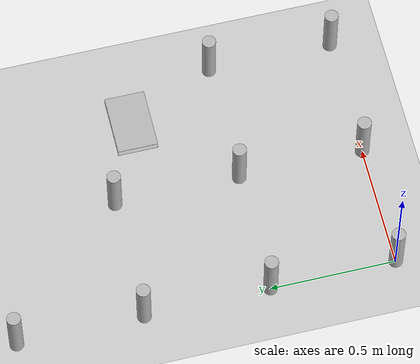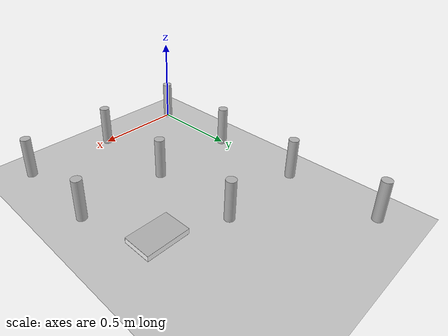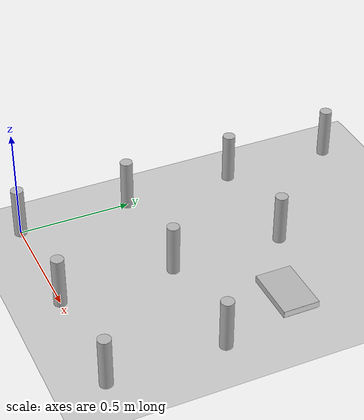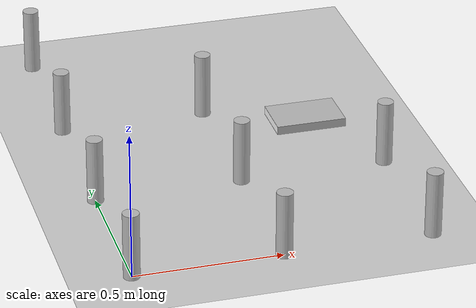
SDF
<sdf version="1.6">
 <world name="default">
  <model name="ground_plane">
   <static>1</static>
   <link name="link">
    <collision name="collision">
     <geometry><plane><normal>0 0 1</normal><size>100 100</size></plane></geometry>
     <surface><friction><ode><mu>100</mu><mu2>50</mu2></ode></friction></surface>
    </collision>
    <visual name="visual">
     <cast_shadows>0</cast_shadows>
     <geometry><plane><normal>0 0 1</normal><size>100 100</size></plane></geometry>
     <material>
      <script><uri>file://media/materials/scripts/gazebo.material</uri><name>Gazebo/Grey</name></script>
     </material>
    </visual>
   </link>
  </model>
  <model name="can0.00.0">
   <link name="link">
    <pose>0 0 0.115 0 -0 0</pose>
    <inertial>
     <mass>39</mass>
     <inertia><ixx>0.00058</ixx><ixy>0</ixy><ixz>0</ixz><iyy>0.00058</iyy><iyz>0</iyz><izz>0.00019</izz></inertia>
    </inertial>
    <collision name="collision">
     <geometry><cylinder><radius>0.0275</radius><length>0.23</length></cylinder></geometry>
    </collision>
    <visual name="visual">
     <geometry><cylinder><radius>0.0275</radius><length>0.23</length></cylinder></geometry>
     <material>
      <script>
       <uri>model://beer/materials/scripts</uri>
       <uri>model://beer/materials/textures</uri>
       <name>Beer/Diffuse</name>
      </script>
     </material>
    </visual>
   </link>
   <pose>0.0 0.0 -2e-06 1e-06 0 -9.5e-05</pose>
  </model>
  <model name="can0.00.5">
   <link name="link">
    <pose>0 0 0.115 0 -0 0</pose>
    <inertial>
     <mass>39</mass>
     <inertia><ixx>0.00058</ixx><ixy>0</ixy><ixz>0</ixz><iyy>0.00058</iyy><iyz>0</iyz><izz>0.00019</izz></inertia>
    </inertial>
    <collision name="collision">
     <geometry><cylinder><radius>0.0275</radius><length>0.23</length></cylinder></geometry>
    </collision>
    <visual name="visual">
     <geometry><cylinder><radius>0.0275</radius><length>0.23</length></cylinder></geometry>
     <material>
      <script>
       <uri>model://beer/materials/scripts</uri>
       <uri>model://beer/materials/textures</uri>
       <name>Beer/Diffuse</name>
      </script>
     </material>
    </visual>
   </link>
   <pose>0.0 0.5 -2e-06 1e-06 0 -9.5e-05</pose>
  </model>
  <model name="can0.01.0">
   <link name="link">
    <pose>0 0 0.115 0 -0 0</pose>
    <inertial>
     <mass>39</mass>
     <inertia><ixx>0.00058</ixx><ixy>0</ixy><ixz>0</ixz><iyy>0.00058</iyy><iyz>0</iyz><izz>0.00019</izz></inertia>
    </inertial>
    <collision name="collision">
     <geometry><cylinder><radius>0.0275</radius><length>0.23</length></cylinder></geometry>
    </collision>
    <visual name="visual">
     <geometry><cylinder><radius>0.0275</radius><length>0.23</length></cylinder></geometry>
     <material>
      <script>
       <uri>model://beer/materials/scripts</uri>
       <uri>model://beer/materials/textures</uri>
       <name>Beer/Diffuse</name>
      </script>
     </material>
    </visual>
   </link>
   <pose>0.0 1.0 -2e-06 1e-06 0 -9.5e-05</pose>
  </model>
  <model name="can0.01.5">
   <link name="link">
    <pose>0 0 0.115 0 -0 0</pose>
    <inertial>
     <mass>39</mass>
     <inertia><ixx>0.00058</ixx><ixy>0</ixy><ixz>0</ixz><iyy>0.00058</iyy><iyz>0</iyz><izz>0.00019</izz></inertia>
    </inertial>
    <collision name="collision">
     <geometry><cylinder><radius>0.0275</radius><length>0.23</length></cylinder></geometry>
    </collision>
    <visual name="visual">
     <geometry><cylinder><radius>0.0275</radius><length>0.23</length></cylinder></geometry>
     <material>
      <script>
       <uri>model://beer/materials/scripts</uri>
       <uri>model://beer/materials/textures</uri>
       <name>Beer/Diffuse</name>
      </script>
     </material>
    </visual>
   </link>
   <pose>0.0 1.5 -2e-06 1e-06 0 -9.5e-05</pose>
  </model>
  <model name="can0.50.0">
   <link name="link">
    <pose>0 0 0.115 0 -0 0</pose>
    <inertial>
     <mass>39</mass>
     <inertia><ixx>0.00058</ixx><ixy>0</ixy><ixz>0</ixz><iyy>0.00058</iyy><iyz>0</iyz><izz>0.00019</izz></inertia>
    </inertial>
    <collision name="collision">
     <geometry><cylinder><radius>0.0275</radius><length>0.23</length></cylinder></geometry>
    </collision>
    <visual name="visual">
     <geometry><cylinder><radius>0.0275</radius><length>0.23</length></cylinder></geometry>
     <material>
      <script>
       <uri>model://beer/materials/scripts</uri>
       <uri>model://beer/materials/textures</uri>
       <name>Beer/Diffuse</name>
      </script>
     </material>
    </visual>
   </link>
   <pose>0.5 0.0 -2e-06 1e-06 0 -9.5e-05</pose>
  </model>
  <model name="can0.50.5">
   <link name="link">
    <pose>0 0 0.115 0 -0 0</pose>
    <inertial>
     <mass>39</mass>
     <inertia><ixx>0.00058</ixx><ixy>0</ixy><ixz>0</ixz><iyy>0.00058</iyy><iyz>0</iyz><izz>0.00019</izz></inertia>
    </inertial>
    <collision name="collision">
     <geometry><cylinder><radius>0.0275</radius><length>0.23</length></cylinder></geometry>
    </collision>
    <visual name="visual">
     <geometry><cylinder><radius>0.0275</radius><length>0.23</length></cylinder></geometry>
     <material>
      <script>
       <uri>model://beer/materials/scripts</uri>
       <uri>model://beer/materials/textures</uri>
       <name>Beer/Diffuse</name>
      </script>
     </material>
    </visual>
   </link>
   <pose>0.5 0.5 -2e-06 1e-06 0 -9.5e-05</pose>
  </model>
  <model name="can0.51.0">
   <link name="link">
    <pose>0 0 0.115 0 -0 0</pose>
    <inertial>
     <mass>39</mass>
     <inertia><ixx>0.00058</ixx><ixy>0</ixy><ixz>0</ixz><iyy>0.00058</iyy><iyz>0</iyz><izz>0.00019</izz></inertia>
    </inertial>
    <collision name="collision">
     <geometry><cylinder><radius>0.0275</radius><length>0.23</length></cylinder></geometry>
    </collision>
    <visual name="visual">
     <geometry><cylinder><radius>0.0275</radius><length>0.23</length></cylinder></geometry>
     <material>
      <script>
       <uri>model://beer/materials/scripts</uri>
       <uri>model://beer/materials/textures</uri>
       <name>Beer/Diffuse</name>
      </script>
     </material>
    </visual>
   </link>
   <pose>0.5 1.0 -2e-06 1e-06 0 -9.5e-05</pose>
  </model>
  <model name="can1.00.0">
   <link name="link">
    <pose>0 0 0.115 0 -0 0</pose>
    <inertial>
     <mass>39</mass>
     <inertia><ixx>0.00058</ixx><ixy>0</ixy><ixz>0</ixz><iyy>0.00058</iyy><iyz>0</iyz><izz>0.00019</izz></inertia>
    </inertial>
    <collision name="collision">
     <geometry><cylinder><radius>0.0275</radius><length>0.23</length></cylinder></geometry>
    </collision>
    <visual name="visual">
     <geometry><cylinder><radius>0.0275</radius><length>0.23</length></cylinder></geometry>
     <material>
      <script>
       <uri>model://beer/materials/scripts</uri>
       <uri>model://beer/materials/textures</uri>
       <name>Beer/Diffuse</name>
      </script>
     </material>
    </visual>
   </link>
   <pose>1.0 0.0 -2e-06 1e-06 0 -9.5e-05</pose>
  </model>
  <model name="can1.00.5">
   <link name="link">
    <pose>0 0 0.115 0 -0 0</pose>
    <inertial>
     <mass>39</mass>
     <inertia><ixx>0.00058</ixx><ixy>0</ixy><ixz>0</ixz><iyy>0.00058</iyy><iyz>0</iyz><izz>0.00019</izz></inertia>
    </inertial>
    <collision name="collision">
     <geometry><cylinder><radius>0.0275</radius><length>0.23</length></cylinder></geometry>
    </collision>
    <visual name="visual">
     <geometry><cylinder><radius>0.0275</radius><length>0.23</length></cylinder></geometry>
     <material>
      <script>
       <uri>model://beer/materials/scripts</uri>
       <uri>model://beer/materials/textures</uri>
       <name>Beer/Diffuse</name>
      </script>
     </material>
    </visual>
   </link>
   <pose>1.0 0.5 -2e-06 1e-06 0 -9.5e-05</pose>
  </model>
  <model name="book_4">
   <link name="cover">
    <pose>0 -0.000108 0.015405 0 -0 0</pose>
    <visual name="visual">
     <geometry><box><size>0.245 0.16 0.03</size></box></geometry>
     <material>
      <script>
       <uri>model://book_1/materials/scripts/book_2.material</uri>
       <uri>model://book_1/materials/textures/cover2.jpg</uri>
       <name>book_2</name>
      </script>
     </material>
    </visual>
    <collision name="collision">
     <geometry><box><size>0.245 0.16 0.03</size></box></geometry>
     <surface><contact>/n</contact><friction><ode><mu>1000</mu><mu2>1000</mu2></ode></friction></surface>
    </collision>
    <inertial>
     <inertia><ixx>0.00058</ixx><ixy>0</ixy><ixz>0</ixz><iyy>0.00058</iyy><iyz>0</iyz><izz>0.00019</izz></inertia>
     <mass>0.05</mass>
    </inertial>
   </link>
   <link name="page">
    <pose>0 0.000608 0.015405 0 -0 0</pose>
    <visual name="visual">
     <geometry><box><size>0.24502 0.15862 0.028</size></box></geometry>
     <material>
      <lighting>1</lighting>
      <ambient>1 1 1 1</ambient>
      <diffuse>1 1 1 1</diffuse>
      <specular>0.01 0.01 0.01 1</specular>
      <emissive>0 0 0 1</emissive>
      <shader type="vertex"><normal_map>__default__</normal_map></shader>
     </material>
    </visual>
    <collision name="collision">
     <geometry><box><size>0.245 0.16 0.03</size></box></geometry>
     <surface><contact>/n</contact><friction><ode><mu>1000</mu><mu2>1000</mu2></ode></friction></surface>
    </collision>
    <inertial>
     <inertia><ixx>0.00058</ixx><ixy>0</ixy><ixz>0</ixz><iyy>0.00058</iyy><iyz>0</iyz><izz>0.00019</izz></inertia>
     <mass>0.05</mass>
    </inertial>
   </link>
   <static>0</static>
   <pose>0.830691 0.858956 0 0 -0 0</pose>
  </model>
 </world>
</sdf>
